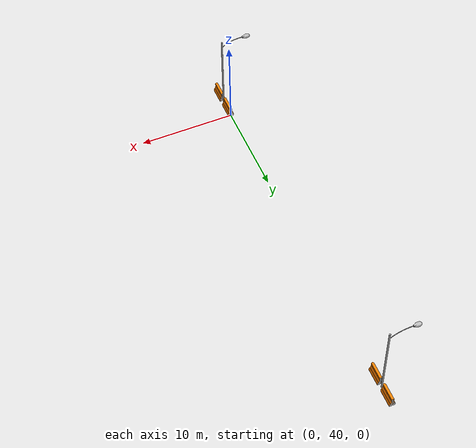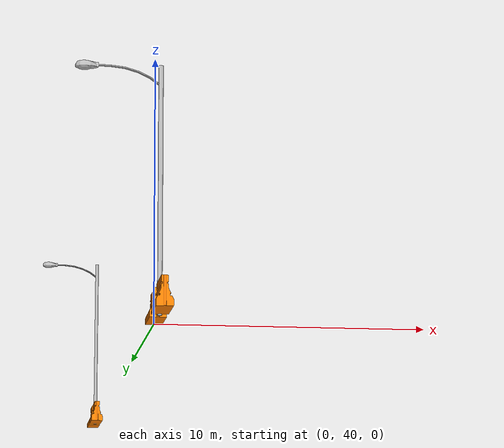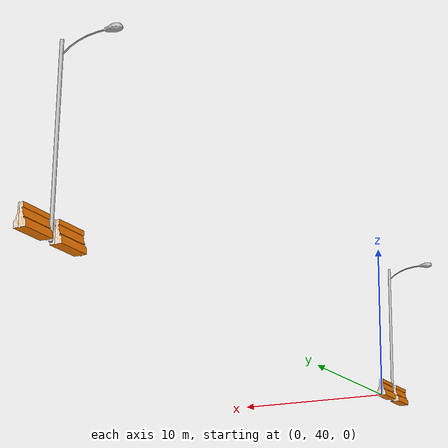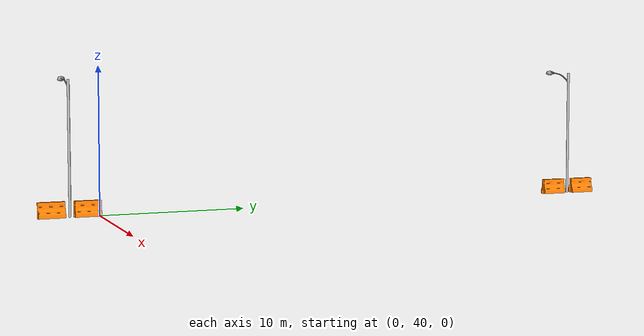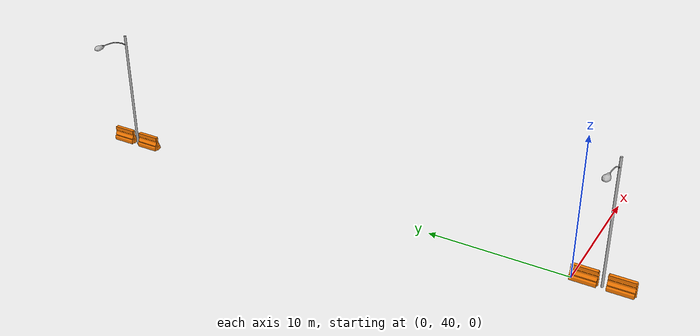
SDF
<?xml version='1.0'?>
<sdf version='1.7'>
  <model name='lamp_assembly_pattern_2'>
    <model name='lamp_post_assembly_0'>
      <model name='Lamp Post'>
        <static>1</static>
        <link name='link'>
          <collision name='collision'>
            <geometry>
              <mesh>
                <uri>model://lamp_post/meshes/lamp_post.dae</uri>
                <scale>3 3 3</scale>
              </mesh>
            </geometry>
            <max_contacts>10</max_contacts>
            <surface>
              <contact>
                <ode/>
              </contact>
              <bounce/>
              <friction>
                <torsional>
                  <ode/>
                </torsional>
                <ode/>
              </friction>
            </surface>
          </collision>
          <visual name='visual'>
            <geometry>
              <mesh>
                <uri>model://lamp_post/meshes/lamp_post.dae</uri>
                <scale>3 3 3</scale>
              </mesh>
            </geometry>
          </visual>
          <self_collide>0</self_collide>
          <enable_wind>0</enable_wind>
          <kinematic>0</kinematic>
        </link>
        <pose>0 0 0 0 0 -1.57594</pose>
      </model>
      <model name='drc_practice_organge_jersey_barrier'>
        <static>1</static>
        <link name='link'>
          <visual name='visual'>
            <geometry>
              <mesh>
                <uri>model://drc_practice_orange_jersey_barrier/meshes/jersey_barrier.dae</uri>
              </mesh>
            </geometry>
          </visual>
          <collision name='collision'>
            <geometry>
              <mesh>
                <uri>model://drc_practice_orange_jersey_barrier/meshes/jersey_barrier.dae</uri>
              </mesh>
            </geometry>
            <max_contacts>10</max_contacts>
            <surface>
              <contact>
                <ode/>
              </contact>
              <bounce/>
              <friction>
                <torsional>
                  <ode/>
                </torsional>
                <ode/>
              </friction>
            </surface>
          </collision>
          <self_collide>0</self_collide>
          <enable_wind>0</enable_wind>
          <kinematic>0</kinematic>
        </link>
        <pose>0 -1.2 0 0 -0 0.003257</pose>
      </model>
      <model name='drc_practice_organge_jersey_barrier_clone'>
        <static>1</static>
        <link name='link'>
          <visual name='visual'>
            <geometry>
              <mesh>
                <uri>model://drc_practice_orange_jersey_barrier/meshes/jersey_barrier.dae</uri>
              </mesh>
            </geometry>
          </visual>
          <collision name='collision'>
            <geometry>
              <mesh>
                <uri>model://drc_practice_orange_jersey_barrier/meshes/jersey_barrier.dae</uri>
              </mesh>
            </geometry>
            <max_contacts>10</max_contacts>
            <surface>
              <contact>
                <ode/>
              </contact>
              <bounce/>
              <friction>
                <torsional>
                  <ode/>
                </torsional>
                <ode/>
              </friction>
            </surface>
          </collision>
          <self_collide>0</self_collide>
          <enable_wind>0</enable_wind>
          <kinematic>0</kinematic>
        </link>
        <pose>0 1.2 0 0 -0 0.003257</pose>
      </model>
      <static>0</static>
      <allow_auto_disable>1</allow_auto_disable>
      <pose>-1e-06 38 0 0 -0 0</pose>
    </model>
    <model name='lamp_post_assembly_0_clone'>
      <model name='Lamp Post'>
        <static>1</static>
        <link name='link'>
          <collision name='collision'>
            <geometry>
              <mesh>
                <uri>model://lamp_post/meshes/lamp_post.dae</uri>
                <scale>3 3 3</scale>
              </mesh>
            </geometry>
            <max_contacts>10</max_contacts>
            <surface>
              <contact>
                <ode/>
              </contact>
              <bounce/>
              <friction>
                <torsional>
                  <ode/>
                </torsional>
                <ode/>
              </friction>
            </surface>
          </collision>
          <visual name='visual'>
            <geometry>
              <mesh>
                <uri>model://lamp_post/meshes/lamp_post.dae</uri>
                <scale>3 3 3</scale>
              </mesh>
            </geometry>
          </visual>
          <self_collide>0</self_collide>
          <enable_wind>0</enable_wind>
          <kinematic>0</kinematic>
        </link>
        <pose>0 0 0 0 0 -1.57594</pose>
      </model>
      <model name='drc_practice_organge_jersey_barrier'>
        <static>1</static>
        <link name='link'>
          <visual name='visual'>
            <geometry>
              <mesh>
                <uri>model://drc_practice_orange_jersey_barrier/meshes/jersey_barrier.dae</uri>
              </mesh>
            </geometry>
          </visual>
          <collision name='collision'>
            <geometry>
              <mesh>
                <uri>model://drc_practice_orange_jersey_barrier/meshes/jersey_barrier.dae</uri>
              </mesh>
            </geometry>
            <max_contacts>10</max_contacts>
            <surface>
              <contact>
                <ode/>
              </contact>
              <bounce/>
              <friction>
                <torsional>
                  <ode/>
                </torsional>
                <ode/>
              </friction>
            </surface>
          </collision>
          <self_collide>0</self_collide>
          <enable_wind>0</enable_wind>
          <kinematic>0</kinematic>
        </link>
        <pose>0 -1.2 0 0 -0 0.003257</pose>
      </model>
      <model name='drc_practice_organge_jersey_barrier_clone'>
        <static>1</static>
        <link name='link'>
          <visual name='visual'>
            <geometry>
              <mesh>
                <uri>model://drc_practice_orange_jersey_barrier/meshes/jersey_barrier.dae</uri>
              </mesh>
            </geometry>
          </visual>
          <collision name='collision'>
            <geometry>
              <mesh>
                <uri>model://drc_practice_orange_jersey_barrier/meshes/jersey_barrier.dae</uri>
              </mesh>
            </geometry>
            <max_contacts>10</max_contacts>
            <surface>
              <contact>
                <ode/>
              </contact>
              <bounce/>
              <friction>
                <torsional>
                  <ode/>
                </torsional>
                <ode/>
              </friction>
            </surface>
          </collision>
          <self_collide>0</self_collide>
          <enable_wind>0</enable_wind>
          <kinematic>0</kinematic>
        </link>
        <pose>0 1.2 0 0 -0 0.003257</pose>
      </model>
      <static>0</static>
      <allow_auto_disable>1</allow_auto_disable>
      <pose>-2e-06 76 0 0 -0 0</pose>
    </model>
    <static>0</static>
    <allow_auto_disable>1</allow_auto_disable>
  </model>
</sdf>
